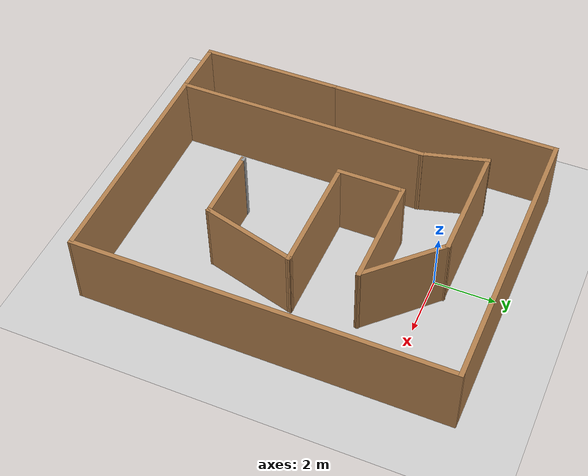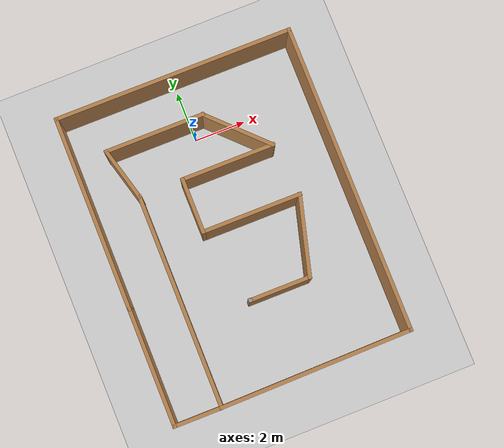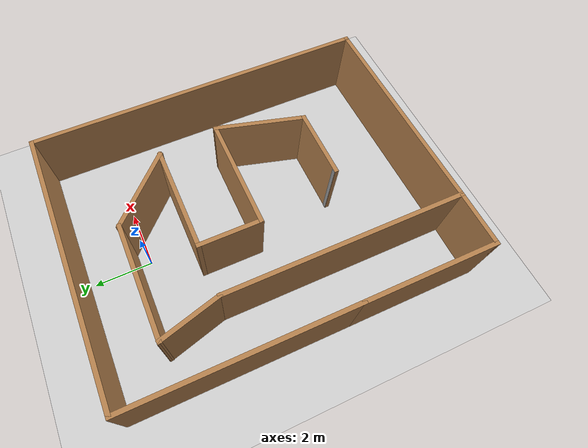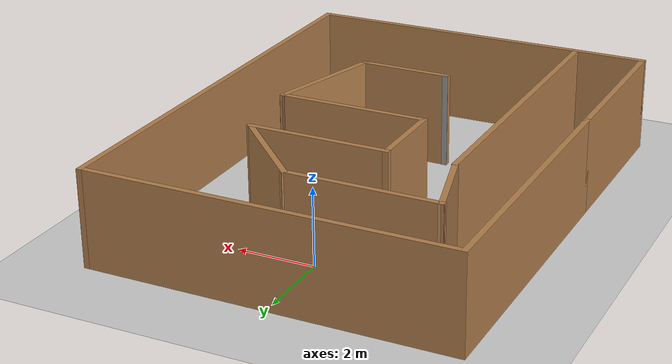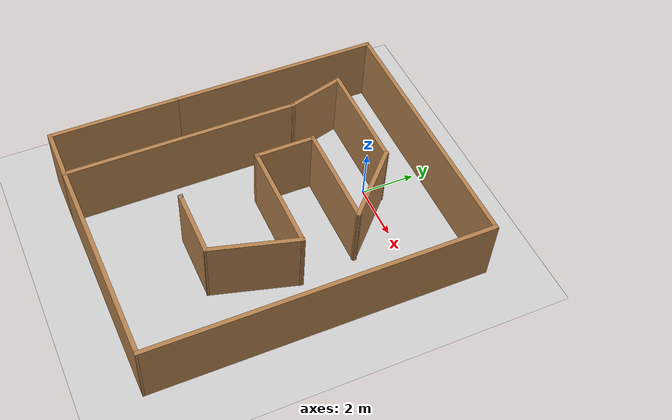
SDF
<sdf version="1.4">
 <world name="default">
  <light name="sun" type="directional">
   <pose>0 0 10 0 -0 0</pose>
   <diffuse>0.8 0.8 0.8 1</diffuse>
   <specular>0.2 0.2 0.2 1</specular>
   <attenuation>
    <range>1000</range>
    <constant>0.9</constant>
    <linear>0.01</linear>
    <quadratic>0.001</quadratic>
   </attenuation>
   <direction>0.5 0.1 -0.9</direction>
  </light>
  <model name="ground_plane">
   <static>1</static>
   <link name="link">
    <collision name="collision">
     <geometry><plane><normal>0 0 1</normal><size>100 100</size></plane></geometry>
     <surface><friction><ode><mu>100</mu><mu2>50</mu2></ode></friction></surface>
    </collision>
    <visual name="visual">
     <cast_shadows>0</cast_shadows>
     <geometry><plane><normal>0 0 1</normal><size>100 100</size></plane></geometry>
     <material>
      <script><uri>file://media/materials/scripts/gazebo.material</uri><name>Gazebo/Grey</name></script>
     </material>
    </visual>
    <velocity_decay><linear>0</linear><angular>0</angular></velocity_decay>
   </link>
  </model>
  <scene><ambient>0.4 0.4 0.4 1</ambient><background>0.7 0.7 0.7 1</background><shadows>0</shadows></scene>
  <physics type="ode">
   <max_step_size>0.01</max_step_size>
   <real_time_factor>1</real_time_factor>
   <real_time_update_rate>0</real_time_update_rate>
   <gravity>0 0 -9.8</gravity>
  </physics>
  <include><uri>model://env0</uri><pose>0 -3.85 0 0 0 1.567</pose></include>
 </world>
</sdf>

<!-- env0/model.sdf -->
<sdf version='1.6'>
  <model name='env_0'>
    <pose frame=''>2.0395 -6.4055 0 0 -0 0</pose>
    <link name='Wall_0'>
      <collision name='Wall_0_Collision'>
        <geometry>
          <box>
            <size>2 0.15 2.5</size>
          </box>
        </geometry>
        <pose frame=''>0 0 1.25 0 -0 0</pose>
      </collision>
      <visual name='Wall_0_Visual'>
        <pose frame=''>0 0 1.25 0 -0 0</pose>
        <geometry>
          <box>
            <size>2 0.15 2.5</size>
          </box>
        </geometry>
        <material>
          <script>
            <uri>file://media/materials/scripts/gazebo.material</uri>
            <name>Gazebo/Wood</name>
          </script>
          <ambient>1 1 1 1</ambient>
        </material>
        <meta>
          <layer>0</layer>
        </meta>
      </visual>
      <pose frame=''>-6.0995 3.7505 0 0 -0 1.5708</pose>
    </link>
    <link name='Wall_1'>
      <collision name='Wall_1_Collision'>
        <geometry>
          <box>
            <size>4.75 0.15 2.5</size>
          </box>
        </geometry>
        <pose frame=''>0 0 1.25 0 -0 0</pose>
      </collision>
      <visual name='Wall_1_Visual'>
        <pose frame=''>0 0 1.25 0 -0 0</pose>
        <geometry>
          <box>
            <size>4.75 0.15 2.5</size>
          </box>
        </geometry>
        <material>
          <script>
            <uri>file://media/materials/scripts/gazebo.material</uri>
            <name>Gazebo/Wood</name>
          </script>
          <ambient>0.666667 0 0 1</ambient>
        </material>
        <meta>
          <layer>0</layer>
        </meta>
      </visual>
      <pose frame=''>-3.7995 4.6755 0 0 -0 0</pose>
    </link>
    <link name='Wall_10'>
      <collision name='Wall_10_Collision'>
        <geometry>
          <box>
            <size>3.75 0.15 2.5</size>
          </box>
        </geometry>
        <pose frame=''>0 0 1.25 0 -0 0</pose>
      </collision>
      <visual name='Wall_10_Visual'>
        <pose frame=''>0 0 1.25 0 -0 0</pose>
        <geometry>
          <box>
            <size>3.75 0.15 2.5</size>
          </box>
        </geometry>
        <material>
          <script>
            <uri>file://media/materials/scripts/gazebo.material</uri>
            <name>Gazebo/Wood</name>
          </script>
          <ambient>0.996078 0.47451 0.0196078 1</ambient>
        </material>
        <meta>
          <layer>0</layer>
        </meta>
      </visual>
      <pose frame=''>2.26369 -0.696238 0 0 -0 1.5708</pose>
    </link>
    <link name='Wall_11'>
      <collision name='Wall_11_Collision'>
        <geometry>
          <box>
            <size>2.25 0.15 2.5</size>
          </box>
        </geometry>
        <pose frame=''>0 0 1.25 0 -0 0</pose>
      </collision>
      <visual name='Wall_11_Visual'>
        <pose frame=''>0 0 1.25 0 -0 0</pose>
        <geometry>
          <box>
            <size>2.25 0.15 2.5</size>
          </box>
        </geometry>
        <material>
          <script>
            <uri>file://media/materials/scripts/gazebo.material</uri>
            <name>Gazebo/Wood</name>
          </script>
          <ambient>1 1 1 1</ambient>
        </material>
        <meta>
          <layer>0</layer>
        </meta>
      </visual>
      <pose frame=''>1.21369 1.10376 0 0 -0 3.14159</pose>
    </link>
    <link name='Wall_12'>
      <collision name='Wall_12_Collision'>
        <geometry>
          <box>
            <size>4 0.15 2.5</size>
          </box>
        </geometry>
        <pose frame=''>0 0 1.25 0 -0 0</pose>
      </collision>
      <visual name='Wall_12_Visual'>
        <pose frame=''>0 0 1.25 0 -0 0</pose>
        <geometry>
          <box>
            <size>4 0.15 2.5</size>
          </box>
        </geometry>
        <material>
          <script>
            <uri>file://media/materials/scripts/gazebo.material</uri>
            <name>Gazebo/Wood</name>
          </script>
          <ambient>0.996078 0.47451 0.0196078 1</ambient>
        </material>
        <meta>
          <layer>0</layer>
        </meta>
      </visual>
      <pose frame=''>0.163686 -0.821238 0 0 0 -1.5708</pose>
    </link>
    <link name='Wall_13'>
      <collision name='Wall_13_Collision'>
        <geometry>
          <box>
            <size>3.25 0.15 2.5</size>
          </box>
        </geometry>
        <pose frame=''>0 0 1.25 0 -0 0</pose>
      </collision>
      <visual name='Wall_13_Visual'>
        <pose frame=''>0 0 1.25 0 -0 0</pose>
        <geometry>
          <box>
            <size>3.25 0.15 2.5</size>
          </box>
        </geometry>
        <material>
          <script>
            <uri>file://media/materials/scripts/gazebo.material</uri>
            <name>Gazebo/Wood</name>
          </script>
          <ambient>0.666667 0 0 1</ambient>
        </material>
        <meta>
          <layer>0</layer>
        </meta>
      </visual>
      <pose frame=''>-1.3335 -2.34507 0 0 -0 2.87979</pose>
    </link>
    <link name='Wall_14'>
      <collision name='Wall_14_Collision'>
        <geometry>
          <box>
            <size>2.5 0.15 2.5</size>
          </box>
        </geometry>
        <pose frame=''>0 0 1.25 0 -0 0</pose>
      </collision>
      <visual name='Wall_14_Visual'>
        <pose frame=''>0 0 1.25 0 -0 0</pose>
        <geometry>
          <box>
            <size>2.5 0.15 2.5</size>
          </box>
        </geometry>
        <material>
          <script>
            <uri>file://media/materials/scripts/gazebo.material</uri>
            <name>Gazebo/Wood</name>
          </script>
          <ambient>1 1 1 1</ambient>
        </material>
        <meta>
          <layer>0</layer>
        </meta>
      </visual>
      <pose frame=''>-2.83068 -0.768898 0 0 -0 1.5708</pose>
    </link>
    <link name='Wall_15'>
      <collision name='Wall_15_Collision'>
        <geometry>
          <box>
            <size>0.16 0.15 2.5</size>
          </box>
        </geometry>
        <pose frame=''>0 0 1.25 0 -0 0</pose>
      </collision>
      <visual name='Wall_15_Visual'>
        <pose frame=''>0 0 1.25 0 -0 0</pose>
        <geometry>
          <box>
            <size>0.16 0.15 2.5</size>
          </box>
        </geometry>
        <material>
          <script>
            <uri>file://media/materials/scripts/gazebo.material</uri>
            <name>Gazebo/Grey</name>
          </script>
          <ambient>1 1 1 1</ambient>
        </material>
        <meta>
          <layer>0</layer>
        </meta>
      </visual>
      <pose frame=''>-2.82568 0.406101 0 0 -0 0</pose>
    </link>
    <link name='Wall_2'>
      <collision name='Wall_2_Collision'>
        <geometry>
          <box>
            <size>7.75 0.15 2.5</size>
          </box>
        </geometry>
        <pose frame=''>0 0 1.25 0 -0 0</pose>
      </collision>
      <visual name='Wall_2_Visual'>
        <pose frame=''>0 0 1.25 0 -0 0</pose>
        <geometry>
          <box>
            <size>7.75 0.15 2.5</size>
          </box>
        </geometry>
        <material>
          <script>
            <uri>file://media/materials/scripts/gazebo.material</uri>
            <name>Gazebo/Wood</name>
          </script>
          <ambient>1 1 1 1</ambient>
        </material>
        <meta>
          <layer>0</layer>
        </meta>
      </visual>
      <pose frame=''>2.3005 4.6755 0 0 -0 0</pose>
    </link>
    <link name='Wall_3'>
      <collision name='Wall_3_Collision'>
        <geometry>
          <box>
            <size>9.5 0.15 2.5</size>
          </box>
        </geometry>
        <pose frame=''>0 0 1.25 0 -0 0</pose>
      </collision>
      <visual name='Wall_3_Visual'>
        <pose frame=''>0 0 1.25 0 -0 0</pose>
        <geometry>
          <box>
            <size>9.5 0.15 2.5</size>
          </box>
        </geometry>
        <material>
          <script>
            <uri>file://media/materials/scripts/gazebo.material</uri>
            <name>Gazebo/Wood</name>
          </script>
          <ambient>0.0588235 0.780392 1 1</ambient>
        </material>
        <meta>
          <layer>0</layer>
        </meta>
      </visual>
      <pose frame=''>6.1005 0.000496 0 0 0 -1.5708</pose>
    </link>
    <link name='Wall_4'>
      <collision name='Wall_4_Collision'>
        <geometry>
          <box>
            <size>12.25 0.15 2.5</size>
          </box>
        </geometry>
        <pose frame=''>0 0 1.25 0 -0 0</pose>
      </collision>
      <visual name='Wall_4_Visual'>
        <pose frame=''>0 0 1.25 0 -0 0</pose>
        <geometry>
          <box>
            <size>12.25 0.15 2.5</size>
          </box>
        </geometry>
        <material>
          <script>
            <uri>file://media/materials/scripts/gazebo.material</uri>
            <name>Gazebo/Wood</name>
          </script>
          <ambient>0.921569 0.807843 0.615686 1</ambient>
        </material>
        <meta>
          <layer>0</layer>
        </meta>
      </visual>
      <pose frame=''>0.050496 -4.6745 0 0 -0 3.14159</pose>
    </link>
    <link name='Wall_5'>
      <collision name='Wall_5_Collision'>
        <geometry>
          <box>
            <size>7.65067 0.15 2.5</size>
          </box>
        </geometry>
        <pose frame=''>0 0 1.25 0 -0 0</pose>
      </collision>
      <visual name='Wall_5_Visual'>
        <pose frame=''>0 0 1.25 0 -0 0</pose>
        <geometry>
          <box>
            <size>7.65067 0.15 2.5</size>
          </box>
        </geometry>
        <material>
          <script>
            <uri>file://media/materials/scripts/gazebo.material</uri>
            <name>Gazebo/Wood</name>
          </script>
          <ambient>0.435294 0.796078 0.67451 1</ambient>
        </material>
        <meta>
          <layer>0</layer>
        </meta>
      </visual>
      <pose frame=''>-6.0495 -0.924503 0 0 -0 1.58413</pose>
    </link>
    <link name='Wall_6'>
      <collision name='Wall_6_Collision'>
        <geometry>
          <box>
            <size>8.5 0.15 2.5</size>
          </box>
        </geometry>
        <pose frame=''>0 0 1.25 0 -0 0</pose>
      </collision>
      <visual name='Wall_6_Visual'>
        <pose frame=''>0 0 1.25 0 -0 0</pose>
        <geometry>
          <box>
            <size>8.5 0.15 2.5</size>
          </box>
        </geometry>
        <material>
          <script>
            <uri>file://media/materials/scripts/gazebo.material</uri>
            <name>Gazebo/Wood</name>
          </script>
          <ambient>0.666667 0 0 1</ambient>
        </material>
        <meta>
          <layer>0</layer>
        </meta>
      </visual>
      <pose frame=''>-1.9245 2.8255 0 0 -0 0</pose>
    </link>
    <link name='Wall_7'>
      <collision name='Wall_7_Collision'>
        <geometry>
          <box>
            <size>2.25 0.15 2.5</size>
          </box>
        </geometry>
        <pose frame=''>0 0 1.25 0 -0 0</pose>
      </collision>
      <visual name='Wall_7_Visual'>
        <pose frame=''>0 0 1.25 0 -0 0</pose>
        <geometry>
          <box>
            <size>2.25 0.15 2.5</size>
          </box>
        </geometry>
        <material>
          <script>
            <uri>file://media/materials/scripts/gazebo.material</uri>
            <name>Gazebo/Wood</name>
          </script>
          <ambient>0.0588235 0.780392 1 1</ambient>
        </material>
        <meta>
          <layer>0</layer>
        </meta>
      </visual>
      <pose frame=''>3.26472 3.09726 0 0 -0 0.261799</pose>
    </link>
    <link name='Wall_8'>
      <collision name='Wall_8_Collision'>
        <geometry>
          <box>
            <size>4 0.15 2.5</size>
          </box>
        </geometry>
        <pose frame=''>0 0 1.25 0 -0 0</pose>
      </collision>
      <visual name='Wall_8_Visual'>
        <pose frame=''>0 0 1.25 0 -0 0</pose>
        <geometry>
          <box>
            <size>4 0.15 2.5</size>
          </box>
        </geometry>
        <material>
          <script>
            <uri>file://media/materials/scripts/gazebo.material</uri>
            <name>Gazebo/Wood</name>
          </script>
          <ambient>0.0588235 0.780392 1 1</ambient>
        </material>
        <meta>
          <layer>0</layer>
        </meta>
      </visual>
      <pose frame=''>4.27894 1.44402 0 0 0 -1.5708</pose>
    </link>
    <link name='Wall_9'>
      <collision name='Wall_9_Collision'>
        <geometry>
          <box>
            <size>3 0.15 2.5</size>
          </box>
        </geometry>
        <pose frame=''>0 0 1.25 0 -0 0</pose>
      </collision>
      <visual name='Wall_9_Visual'>
        <pose frame=''>0 0 1.25 0 -0 0</pose>
        <geometry>
          <box>
            <size>3 0.15 2.5</size>
          </box>
        </geometry>
        <material>
          <script>
            <uri>file://media/materials/scripts/gazebo.material</uri>
            <name>Gazebo/Wood</name>
          </script>
          <ambient>1 1 1 1</ambient>
        </material>
        <meta>
          <layer>0</layer>
        </meta>
      </visual>
      <pose frame=''>3.27131 -1.48861 0 0 0 -2.35619</pose>
    </link>
    <static>1</static>
  </model>
</sdf>
